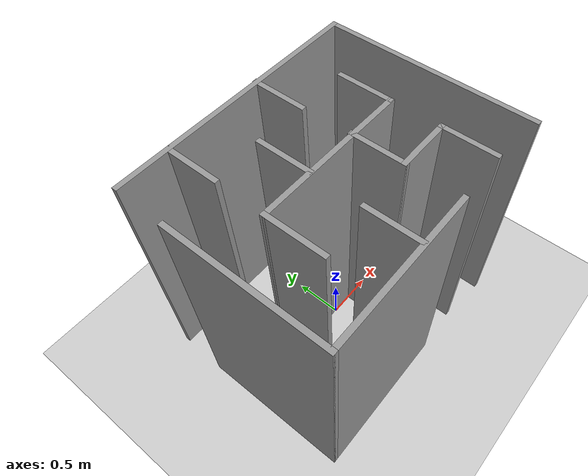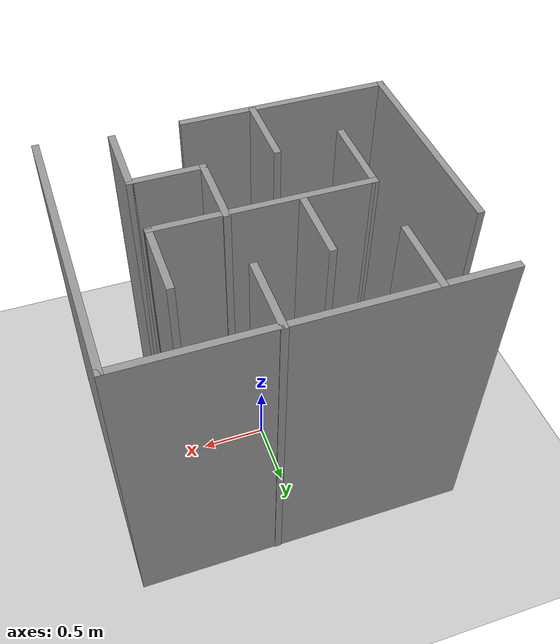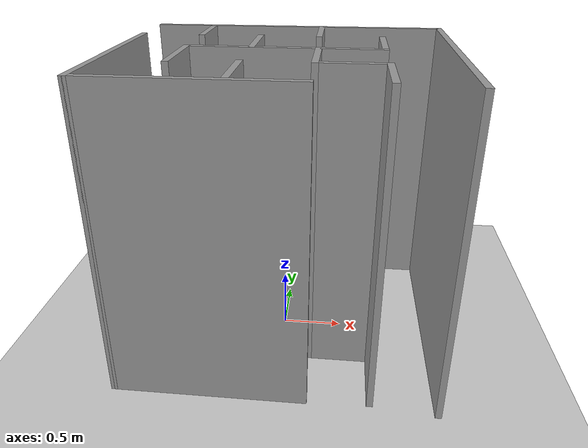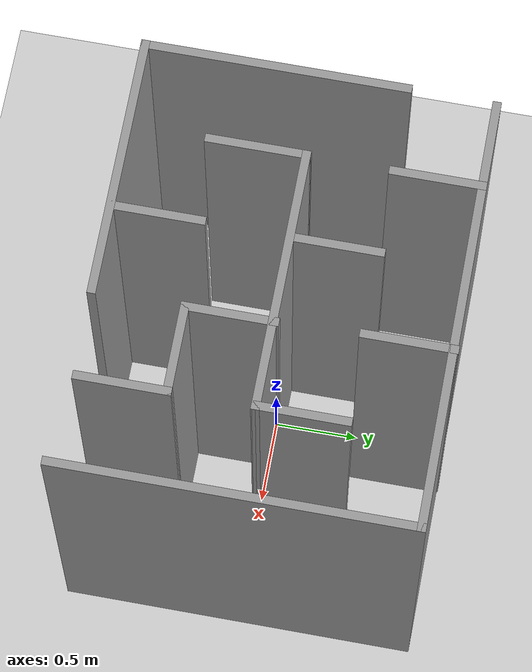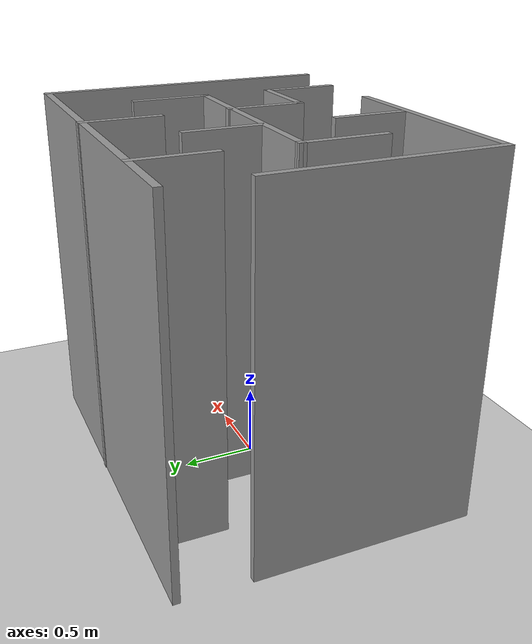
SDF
<?xml version="1.0"?>
<sdf version="1.6">
  <world name="default">

    <include>
      <uri>model://ground_plane</uri>
    </include>

    <include>
      <uri>model://sun</uri>
    </include>

    <scene>
      <shadows>false</shadows>
    </scene>

    <gui fullscreen='0'>
      <camera name='user_camera'>
        <pose frame=''>0.319654 -0.235002 9.29441 0 1.5138 0.009599</pose>
        <view_controller>orbit</view_controller>
        <projection_type>perspective</projection_type>
      </camera>
    </gui>

    <physics type="ode">
      <real_time_update_rate>1000.0</real_time_update_rate>
      <max_step_size>0.001</max_step_size>
      <real_time_factor>1</real_time_factor>
      <ode>
        <solver>
          <type>quick</type>
          <iters>150</iters>
          <precon_iters>0</precon_iters>
          <sor>1.400000</sor>
          <use_dynamic_moi_rescaling>1</use_dynamic_moi_rescaling>
        </solver>
        <constraints>
          <cfm>0.00001</cfm>
          <erp>0.2</erp>
          <contact_max_correcting_vel>2000.000000</contact_max_correcting_vel>
          <contact_surface_layer>0.01000</contact_surface_layer>
        </constraints>
      </ode>
    </physics>

    <model name="maze_world">
      <static>1</static>
      <include>
        <uri>model://my_maze</uri>
      </include>
    </model>

  </world>
</sdf>

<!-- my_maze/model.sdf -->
<sdf version='1.7'>
  <model name='my_maze'>
    <pose>0 0 0 0 -0 0</pose>
    <link name='Wall_0'>
      <collision name='Wall_0_Collision'>
        <geometry>
          <box>
            <size>2.55 0.05 2.5</size>
          </box>
        </geometry>
        <pose>0 0 1.25 0 -0 0</pose>
      </collision>
      <visual name='Wall_0_Visual'>
        <pose>0 0 1.25 0 -0 0</pose>
        <geometry>
          <box>
            <size>2.55 0.05 2.5</size>
          </box>
        </geometry>
        <material>
          <script>
            <uri>file://media/materials/scripts/gazebo.material</uri>
            <name>Gazebo/Grey</name>
          </script>
          <ambient>1 1 1 1</ambient>
        </material>
        <meta>
          <layer>0</layer>
        </meta>
      </visual>
      <pose>0.007842 1.02185 0 0 -0 0</pose>
    </link>
    <link name='Wall_10'>
      <collision name='Wall_10_Collision'>
        <geometry>
          <box>
            <size>0.6 0.05 2.5</size>
          </box>
        </geometry>
        <pose>0 0 1.25 0 -0 0</pose>
      </collision>
      <visual name='Wall_10_Visual'>
        <pose>0 0 1.25 0 -0 0</pose>
        <geometry>
          <box>
            <size>0.6 0.05 2.5</size>
          </box>
        </geometry>
        <material>
          <script>
            <uri>file://media/materials/scripts/gazebo.material</uri>
            <name>Gazebo/Grey</name>
          </script>
          <ambient>1 1 1 1</ambient>
        </material>
        <meta>
          <layer>0</layer>
        </meta>
      </visual>
      <pose>-0.75813 -0.246274 0 0 -0 -1.5708</pose>
    </link>
    <link name='Wall_12'>
      <collision name='Wall_12_Collision'>
        <geometry>
          <box>
            <size>0.55 0.05 2.5</size>
          </box>
        </geometry>
        <pose>0 0 1.25 0 -0 0</pose>
      </collision>
      <visual name='Wall_12_Visual'>
        <pose>0 0 1.25 0 -0 0</pose>
        <geometry>
          <box>
            <size>0.55 0.05 2.5</size>
          </box>
        </geometry>
        <material>
          <script>
            <uri>file://media/materials/scripts/gazebo.material</uri>
            <name>Gazebo/Grey</name>
          </script>
          <ambient>1 1 1 1</ambient>
        </material>
        <meta>
          <layer>0</layer>
        </meta>
      </visual>
      <pose>-0.751555 0.771576 0 0 -0 -1.5708</pose>
    </link>
    <link name='Wall_14'>
      <collision name='Wall_14_Collision'>
        <geometry>
          <box>
            <size>0.55 0.05 2.5</size>
          </box>
        </geometry>
        <pose>0 0 1.25 0 -0 0</pose>
      </collision>
      <visual name='Wall_14_Visual'>
        <pose>0 0 1.25 0 -0 0</pose>
        <geometry>
          <box>
            <size>0.55 0.05 2.5</size>
          </box>
        </geometry>
        <material>
          <script>
            <uri>file://media/materials/scripts/gazebo.material</uri>
            <name>Gazebo/Grey</name>
          </script>
          <ambient>1 1 1 1</ambient>
        </material>
        <meta>
          <layer>0</layer>
        </meta>
      </visual>
      <pose>0.228145 0.778151 0 0 -0 -1.5708</pose>
    </link>
    <link name='Wall_16'>
      <collision name='Wall_16_Collision'>
        <geometry>
          <box>
            <size>0.55 0.05 2.5</size>
          </box>
        </geometry>
        <pose>0 0 1.25 0 -0 0</pose>
      </collision>
      <visual name='Wall_16_Visual'>
        <pose>0 0 1.25 0 -0 0</pose>
        <geometry>
          <box>
            <size>0.55 0.05 2.5</size>
          </box>
        </geometry>
        <material>
          <script>
            <uri>file://media/materials/scripts/gazebo.material</uri>
            <name>Gazebo/Grey</name>
          </script>
          <ambient>1 1 1 1</ambient>
        </material>
        <meta>
          <layer>0</layer>
        </meta>
      </visual>
      <pose>-0.258417 0.285301 0 0 -0 1.5708</pose>
    </link>
    <link name='Wall_18'>
      <collision name='Wall_18_Collision'>
        <geometry>
          <box>
            <size>0.55 0.05 2.5</size>
          </box>
        </geometry>
        <pose>0 0 1.25 0 -0 0</pose>
      </collision>
      <visual name='Wall_18_Visual'>
        <pose>0 0 1.25 0 -0 0</pose>
        <geometry>
          <box>
            <size>0.55 0.05 2.5</size>
          </box>
        </geometry>
        <material>
          <script>
            <uri>file://media/materials/scripts/gazebo.material</uri>
            <name>Gazebo/Grey</name>
          </script>
          <ambient>1 1 1 1</ambient>
        </material>
        <meta>
          <layer>0</layer>
        </meta>
      </visual>
      <pose>-0.264993 -0.720698 0 0 -0 1.5708</pose>
    </link>
    <link name='Wall_2'>
      <collision name='Wall_2_Collision'>
        <geometry>
          <box>
            <size>2.1 0.05 2.5</size>
          </box>
        </geometry>
        <pose>0 0 1.25 0 -0 0</pose>
      </collision>
      <visual name='Wall_2_Visual'>
        <pose>0 0 1.25 0 -0 0</pose>
        <geometry>
          <box>
            <size>2.1 0.05 2.5</size>
          </box>
        </geometry>
        <material>
          <script>
            <uri>file://media/materials/scripts/gazebo.material</uri>
            <name>Gazebo/Grey</name>
          </script>
          <ambient>1 1 1 1</ambient>
        </material>
        <meta>
          <layer>0</layer>
        </meta>
      </visual>
      <pose>1.25784 -0.003151 0 0 -0 -1.5708</pose>
    </link>
    <link name='Wall_20'>
      <collision name='Wall_20_Collision'>
        <geometry>
          <box>
            <size>0.55 0.05 2.5</size>
          </box>
        </geometry>
        <pose>0 0 1.25 0 -0 0</pose>
      </collision>
      <visual name='Wall_20_Visual'>
        <pose>0 0 1.25 0 -0 0</pose>
        <geometry>
          <box>
            <size>0.55 0.05 2.5</size>
          </box>
        </geometry>
        <material>
          <script>
            <uri>file://media/materials/scripts/gazebo.material</uri>
            <name>Gazebo/Grey</name>
          </script>
          <ambient>1 1 1 1</ambient>
        </material>
        <meta>
          <layer>0</layer>
        </meta>
      </visual>
      <pose>0.74187 0.278726 0 0 -0 1.5708</pose>
    </link>
    <link name='Wall_22'>
      <collision name='Wall_22_Collision'>
        <geometry>
          <box>
            <size>0.55 0.05 2.5</size>
          </box>
        </geometry>
        <pose>0 0 1.25 0 -0 0</pose>
      </collision>
      <visual name='Wall_22_Visual'>
        <pose>0 0 1.25 0 -0 0</pose>
        <geometry>
          <box>
            <size>0.55 0.05 2.5</size>
          </box>
        </geometry>
        <material>
          <script>
            <uri>file://media/materials/scripts/gazebo.material</uri>
            <name>Gazebo/Grey</name>
          </script>
          <ambient>1 1 1 1</ambient>
        </material>
        <meta>
          <layer>0</layer>
        </meta>
      </visual>
      <pose>0.24787 -0.214699 0 0 -0 -1.5708</pose>
    </link>
    <link name='Wall_24'>
      <collision name='Wall_24_Collision'>
        <geometry>
          <box>
            <size>0.55 0.05 2.5</size>
          </box>
        </geometry>
        <pose>0 0 1.25 0 -0 0</pose>
      </collision>
      <visual name='Wall_24_Visual'>
        <pose>0 0 1.25 0 -0 0</pose>
        <geometry>
          <box>
            <size>0.55 0.05 2.5</size>
          </box>
        </geometry>
        <material>
          <script>
            <uri>file://media/materials/scripts/gazebo.material</uri>
            <name>Gazebo/Grey</name>
          </script>
          <ambient>1 1 1 1</ambient>
        </material>
        <meta>
          <layer>0</layer>
        </meta>
      </visual>
      <pose>0.49787 -0.464699 0 0 -0 0</pose>
    </link>
    <link name='Wall_26'>
      <collision name='Wall_26_Collision'>
        <geometry>
          <box>
            <size>0.55 0.05 2.5</size>
          </box>
        </geometry>
        <pose>0 0 1.25 0 -0 0</pose>
      </collision>
      <visual name='Wall_26_Visual'>
        <pose>0 0 1.25 0 -0 0</pose>
        <geometry>
          <box>
            <size>0.55 0.05 2.5</size>
          </box>
        </geometry>
        <material>
          <script>
            <uri>file://media/materials/scripts/gazebo.material</uri>
            <name>Gazebo/Grey</name>
          </script>
          <ambient>1 1 1 1</ambient>
        </material>
        <meta>
          <layer>0</layer>
        </meta>
      </visual>
      <pose>0.74787 -0.714699 0 0 -0 -1.5708</pose>
    </link>
    <link name='Wall_4'>
      <collision name='Wall_4_Collision'>
        <geometry>
          <box>
            <size>1.55 0.05 2.5</size>
          </box>
        </geometry>
        <pose>0 0 1.25 0 -0 0</pose>
      </collision>
      <visual name='Wall_4_Visual'>
        <pose>0 0 1.25 0 -0 0</pose>
        <geometry>
          <box>
            <size>1.55 0.05 2.5</size>
          </box>
        </geometry>
        <material>
          <script>
            <uri>file://media/materials/scripts/gazebo.material</uri>
            <name>Gazebo/Grey</name>
          </script>
          <ambient>1 1 1 1</ambient>
        </material>
        <meta>
          <layer>0</layer>
        </meta>
      </visual>
      <pose>-1.25784 -0.234712 0 0 -0 -1.5708</pose>
    </link>
    <link name='Wall_6'>
      <collision name='Wall_6_Collision'>
        <geometry>
          <box>
            <size>1.55 0.05 2.5</size>
          </box>
        </geometry>
        <pose>0 0 1.25 0 -0 0</pose>
      </collision>
      <visual name='Wall_6_Visual'>
        <pose>0 0 1.25 0 -0 0</pose>
        <geometry>
          <box>
            <size>1.55 0.05 2.5</size>
          </box>
        </geometry>
        <material>
          <script>
            <uri>file://media/materials/scripts/gazebo.material</uri>
            <name>Gazebo/Grey</name>
          </script>
          <ambient>1 1 1 1</ambient>
        </material>
        <meta>
          <layer>0</layer>
        </meta>
      </visual>
      <pose>-0.507842 -0.984712 0 0 -0 0</pose>
    </link>
    <link name='Wall_8'>
      <collision name='Wall_8_Collision'>
        <geometry>
          <box>
            <size>1.55 0.05 2.5</size>
          </box>
        </geometry>
        <pose>0 0 1.25 0 -0 0</pose>
      </collision>
      <visual name='Wall_8_Visual'>
        <pose>0 0 1.25 0 -0 0</pose>
        <geometry>
          <box>
            <size>1.55 0.05 2.5</size>
          </box>
        </geometry>
        <material>
          <script>
            <uri>file://media/materials/scripts/gazebo.material</uri>
            <name>Gazebo/Grey</name>
          </script>
          <ambient>1 1 1 1</ambient>
        </material>
        <meta>
          <layer>0</layer>
        </meta>
      </visual>
      <pose>-0.00813 0.025439 0 0 -0 -0.004383</pose>
    </link>
    <static>1</static>
  </model>
</sdf>
